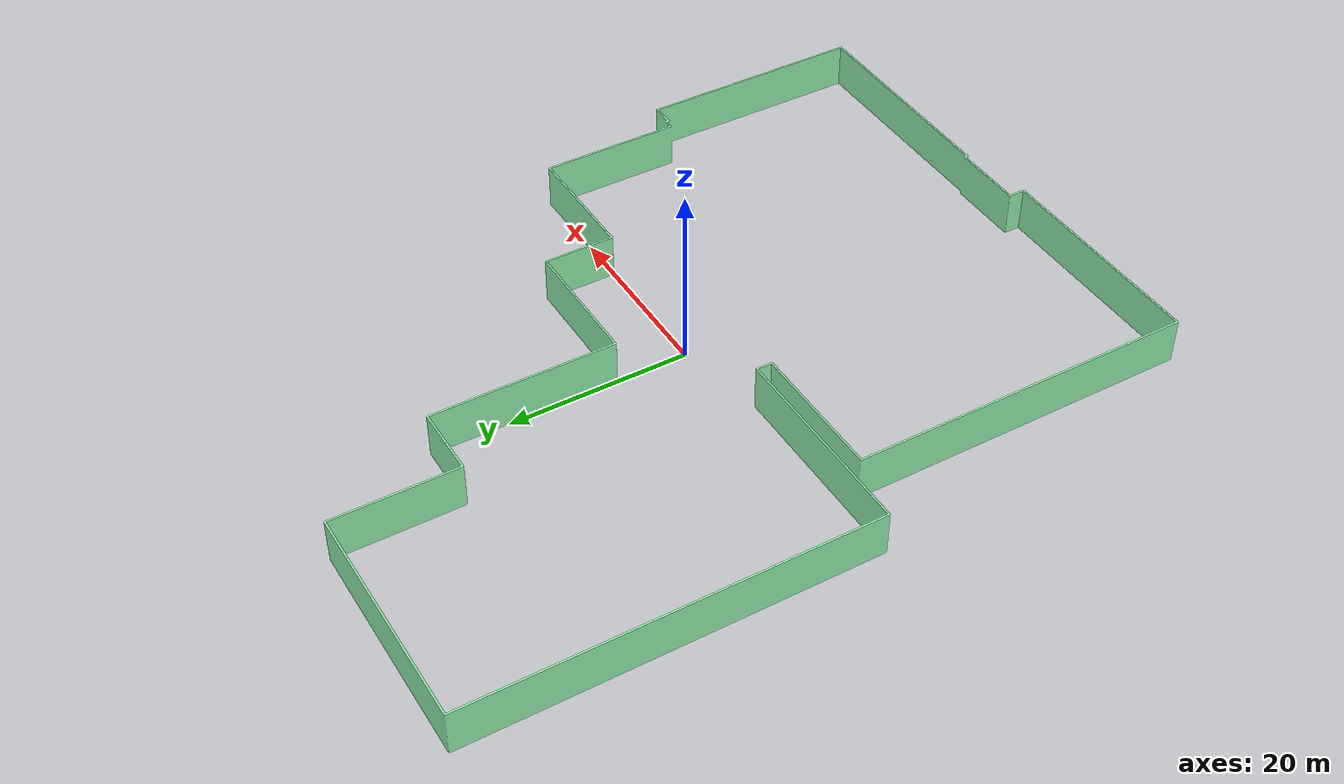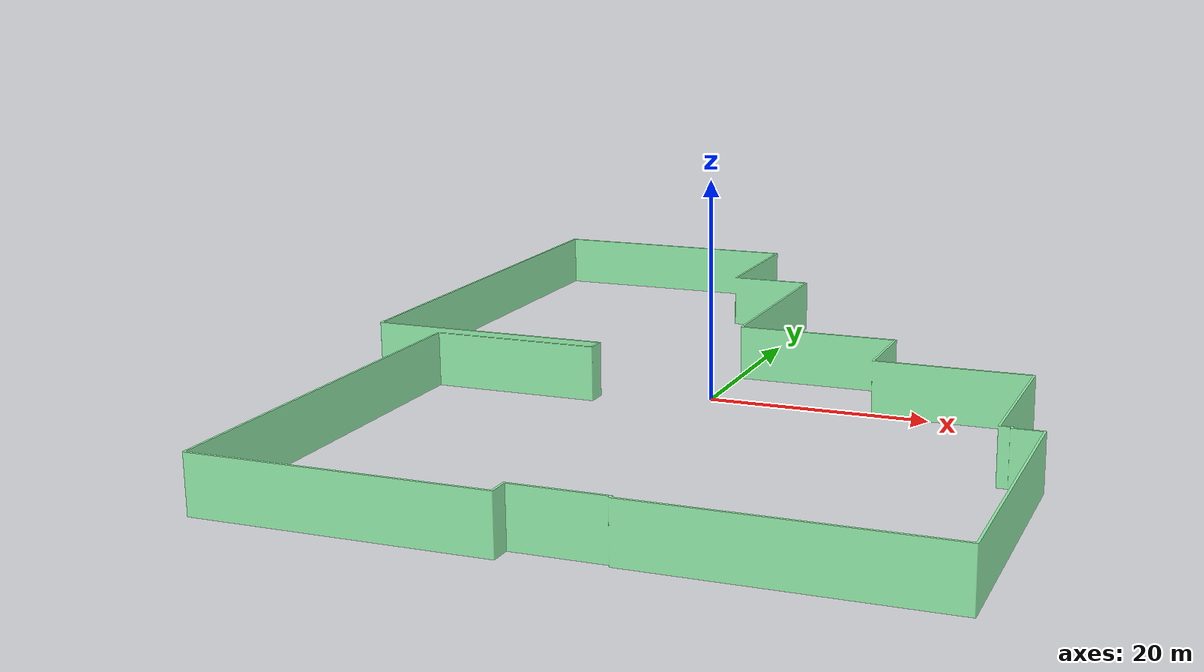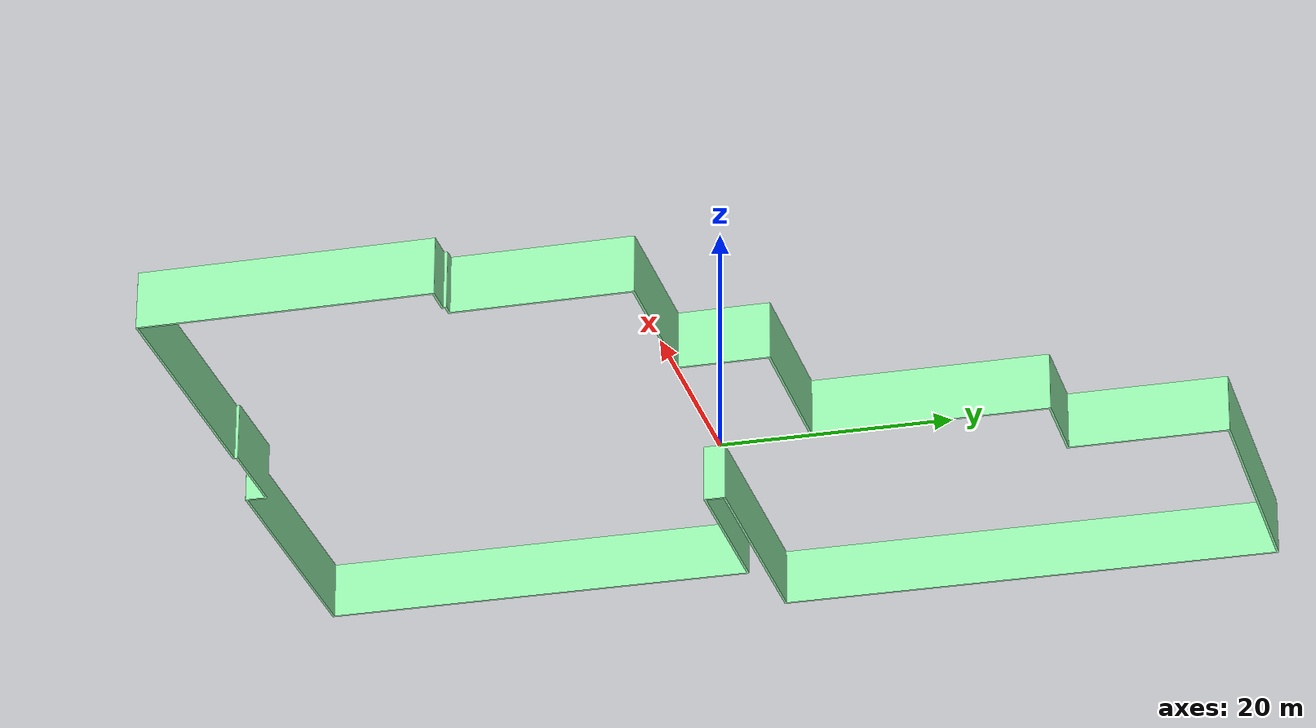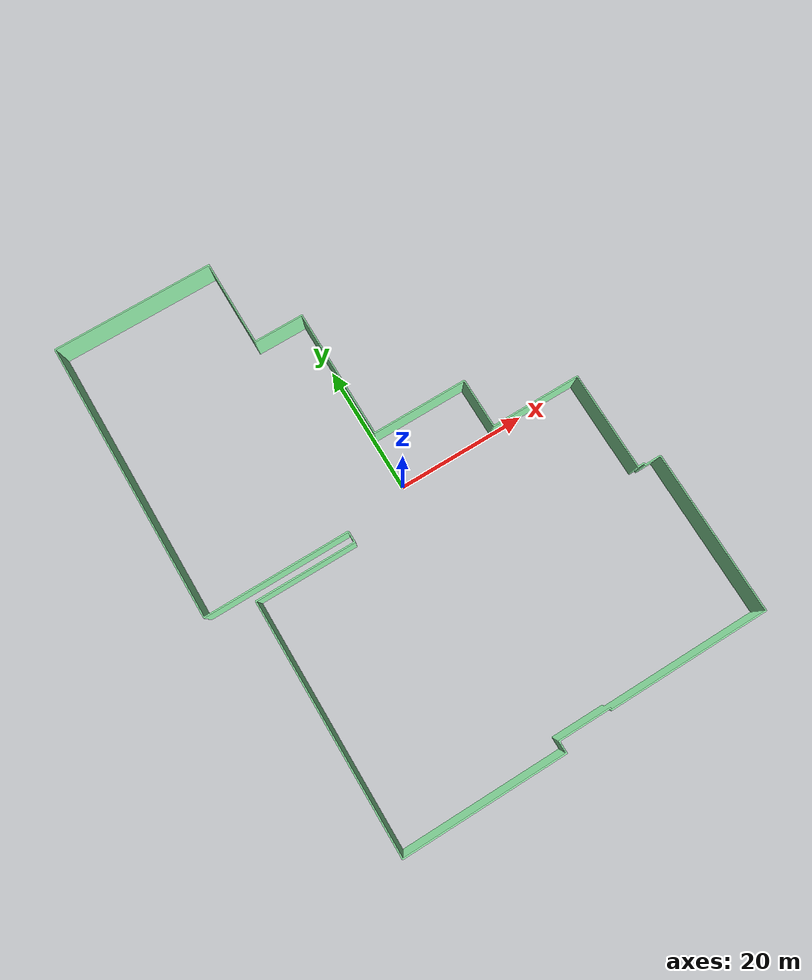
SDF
<?xml version="1.0" ?>
<sdf version="1.6">
  <model name="test_1_walls">
    <pose frame="">0 0 2.5 0 -0 0</pose>
    <static>1</static>
    <self_collide>0</self_collide>
    <allow_auto_disable>0</allow_auto_disable>
    <link name="mesh">
      <kinematic>0</kinematic>
      <gravity>1</gravity>
      <self_collide>0</self_collide>
      <collision name="collision">
        <geometry>
          <mesh>
            <uri>file:///home/agusmazzeo/Documents/UTN/Proyecto/Frontier-Exploration-with-a-prior/Notebooks/files/models/test_1_walls/meshes/fiItfiqicw.stl</uri>
            <scale>1 1 1</scale>
          </mesh>
        </geometry>
        <pose frame="">4.6407 -5.06212 -2.5 0 -0 0</pose>
        <max_contacts>20</max_contacts>
      </collision>
      <visual name="visual">
        <geometry>
          <mesh>
            <uri>file:///home/agusmazzeo/Documents/UTN/Proyecto/Frontier-Exploration-with-a-prior/Notebooks/files/models/test_1_walls/meshes/GUMoRWRNUq.stl</uri>
            <scale>1 1 1</scale>
          </mesh>
        </geometry>
        <material>
          <ambient>0.596078 0.964706 0.690196 1</ambient>
          <diffuse>0.596078431372549 0.9647058823529412 0.6901960784313725 1</diffuse>
        </material>
        <pose frame="">4.6407 -5.06212 -2.5 0 -0 0</pose>
        <cast_shadows>1</cast_shadows>
        <transparency>0.0</transparency>
      </visual>
      <pose frame="">0 0 0 0 -0 0</pose>
    </link>
  </model>
</sdf>
